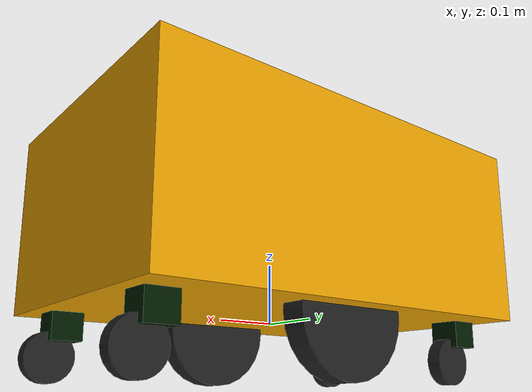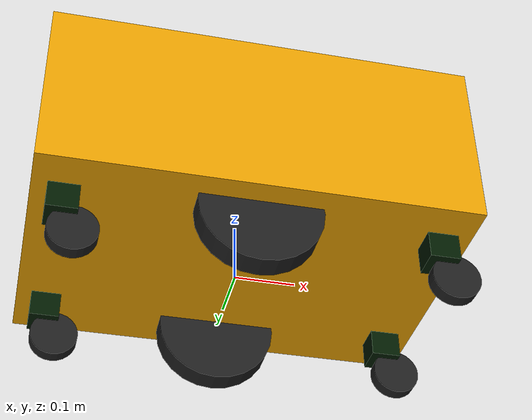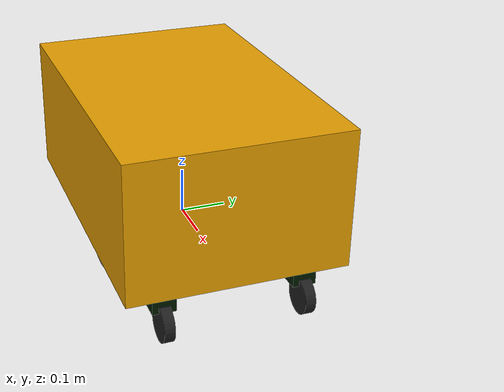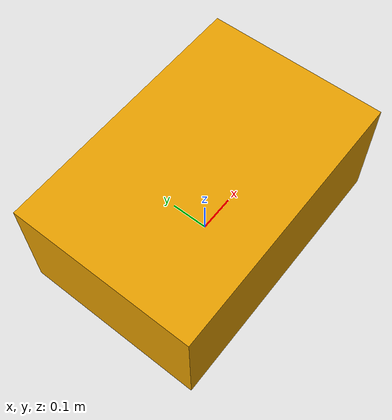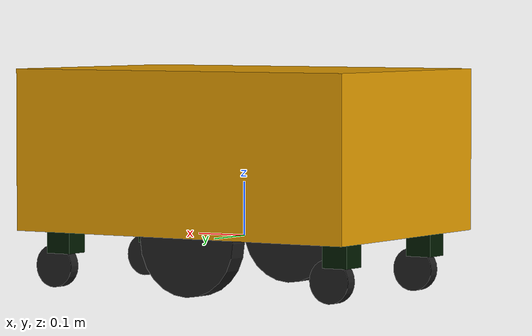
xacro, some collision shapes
<?xml version="1.0"?>

<robot xmlns:xacro="http://www.ros.org/wiki/xacro" name="moborobo_robot">

  <xacro:property name="mesh_path" value="file://$(find moborobo_robot)/meshes/moborobo_short.stl"/>

  <link name="base_link">
    <visual>
      <geometry>
        <mesh filename="${mesh_path}" scale="1 1 1"/>
      </geometry>
    </visual>
    <collision>
      <origin xyz="0 0 0.04" rpy="0 0 0"/>
      <geometry>
        <box size="0.70 0.470 0.3"/>
      </geometry>
    </collision>
    <inertial>
      <origin xyz="0 0 0.06" rpy="0 0 0"/>
      <mass value="20.0"/>
      <inertia ixx="0.51816" ixy="0" ixz="0" iyy="0.966664" iyz="0" izz="1.18484"/>
    </inertial>
  </link>

  <link name="base_footprint"/>
  <joint name="base_footprint_joint" type="fixed">
    <parent link="base_footprint"/>
    <child link="base_link"/>
    <origin xyz="0 0 0.120" rpy="0 0 0"/>
  </joint>

  <xacro:macro name="caster_wheel" params="caster_name caster_xyz wheel_xyz">
    <link name="${caster_name}">
      <visual>
        <geometry>
          <box size="0.05 0.05 0.05"/>
        </geometry>
        <material name="green">
          <color rgba="0.0 0.1 0.0 1"/>
        </material>
      </visual>
      <collision>
        <geometry>
          <box size="0.05 0.05 0.05"/>
        </geometry>
      </collision>
      <inertial>
        <mass value="0.5"/>
        <inertia ixx="0.000208332" ixy="0" ixz="0" iyy="0.000208332" iyz="0" izz="0.000208332"/>
      </inertial>
    </link>

    <joint name="${caster_name}_joint" type="continuous">
      <parent link="base_link"/>
      <child link="${caster_name}"/>
      <origin xyz="${caster_xyz}" rpy="0 0 0"/>
      <axis xyz="0 0 1"/>
    </joint>

    <link name="${caster_name}_wheel">
      <visual>
        <geometry>
          <cylinder radius="0.04" length="0.0228"/>
        </geometry>
      </visual>
      <collision>
        <geometry>
          <cylinder radius="0.04" length="0.0228"/>
        </geometry>
      </collision>
      <inertial>
        <mass value="0.5"/>
        <inertia ixx="0.00022166" ixy="0" ixz="0" iyy="0.00022166" iyz="0" izz="0.0004"/>
      </inertial>
    </link>

    <joint name="${caster_name}_wheel_joint" type="continuous">
      <parent link="${caster_name}"/>
      <child link="${caster_name}_wheel"/>
      <origin xyz="${wheel_xyz}" rpy="-1.5708 0 0"/>
      <axis xyz="0 0 1"/>
    </joint>
  </xacro:macro>

  <xacro:caster_wheel caster_name="back_left_caster" caster_xyz="-0.300 0.150 -0.130" wheel_xyz="0.02 0 -0.05"/>
  <xacro:caster_wheel caster_name="back_right_caster" caster_xyz="-0.300 -0.150 -0.130" wheel_xyz="0.02 0 -0.05"/>
  <xacro:caster_wheel caster_name="front_left_caster" caster_xyz="0.300 0.150 -0.130" wheel_xyz="0.02 0 -0.05"/>
  <xacro:caster_wheel caster_name="front_right_caster" caster_xyz="0.300 -0.150 -0.130" wheel_xyz="0.02 0 -0.05"/>

  <link name="right_wheel">
    <visual>
      <geometry>
        <cylinder radius="0.1" length="0.04"/>
      </geometry>
    </visual>
    <collision>
      <geometry>
        <cylinder radius="0.1" length="0.04"/>
      </geometry>
    </collision>
    <inertial>
      <mass value="2"/>
      <inertia ixx="0.005066668" ixy="0" ixz="0" iyy="0.005066668" iyz="0" izz="0.01"/>
    </inertial>
  </link>

  <joint name="right_wheel_joint" type="continuous">
    <parent link="base_link"/>
    <child link="right_wheel"/>
    <origin xyz="0.0 -0.175 -0.120" rpy="-1.5708 0 0"/>
    <axis xyz="0 0 1"/>
  </joint>

  <link name="left_wheel">
    <visual>
      <geometry>
        <cylinder radius="0.1" length="0.04"/>
      </geometry>
    </visual>
    <collision>
      <geometry>
        <cylinder radius="0.1" length="0.04"/>
      </geometry>
    </collision>
    <inertial>
      <mass value="0.5"/>
      <inertia ixx="0.001266667" ixy="0" ixz="0" iyy="0.001266667" iyz="0" izz="0.0025"/>
    </inertial>
  </link>

  <joint name="left_wheel_joint" type="continuous">
    <parent link="base_link"/>
    <child link="left_wheel"/>
    <origin xyz="0.0 0.175 -0.120" rpy="-1.5708 0 0"/>
    <axis xyz="0 0 1"/>
  </joint>

  <gazebo>
    <plugin name="gazebo_ros_joint_state_publisher" filename="libgazebo_ros_joint_state_publisher.so">
      <update_rate>50</update_rate>
      <joint_name>front_left_caster_joint</joint_name>
      <joint_name>front_left_caster_wheel_joint</joint_name>
      <joint_name>front_right_caster_joint</joint_name>
      <joint_name>front_right_caster_wheel_joint</joint_name>
      <joint_name>back_left_caster_joint</joint_name>
      <joint_name>back_left_caster_wheel_joint</joint_name>
      <joint_name>back_right_caster_joint</joint_name>
      <joint_name>back_right_caster_wheel_joint</joint_name>
      <joint_name>left_wheel_joint</joint_name>
      <joint_name>right_wheel_joint</joint_name>
    </plugin>
  </gazebo>

  <gazebo>
    <plugin name="gazebo_ros_p3d" filename="libgazebo_ros_p3d.so">
      <ros>
        <remapping>odom:=ground_truth/odom</remapping>
      </ros>
      <body_name>base_link</body_name>
      <frame_name>world</frame_name>
      <update_rate>50</update_rate>
      <xyz_offsets>0 0 0</xyz_offsets>
      <rpy_offsets>0 0 0</rpy_offsets>
    </plugin>
  </gazebo>

  <!-- Gazebo materials -->
  <gazebo reference="back_left_caster"><material>Gazebo/White</material></gazebo>
  <gazebo reference="back_left_caster_wheel"><material>Gazebo/Black</material></gazebo>
  <gazebo reference="back_right_caster"><material>Gazebo/White</material></gazebo>
  <gazebo reference="back_right_caster_wheel"><material>Gazebo/Black</material></gazebo>
  <gazebo reference="front_left_caster"><material>Gazebo/White</material></gazebo>
  <gazebo reference="front_left_caster_wheel"><material>Gazebo/Black</material></gazebo>
  <gazebo reference="front_right_caster"><material>Gazebo/White</material></gazebo>
  <gazebo reference="front_right_caster_wheel"><material>Gazebo/Black</material></gazebo>
  <gazebo reference="left_wheel"><material>Gazebo/Black</material></gazebo>
  <gazebo reference="right_wheel"><material>Gazebo/Black</material></gazebo>

</robot>
